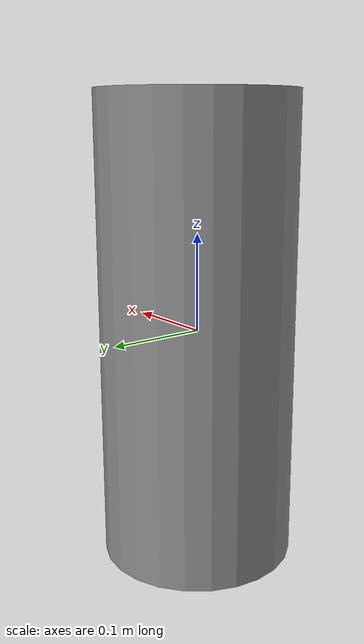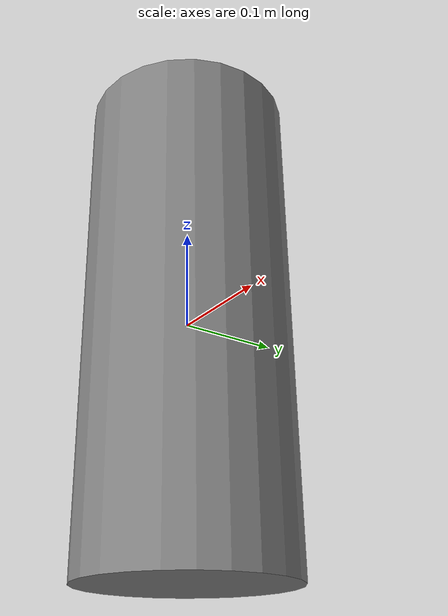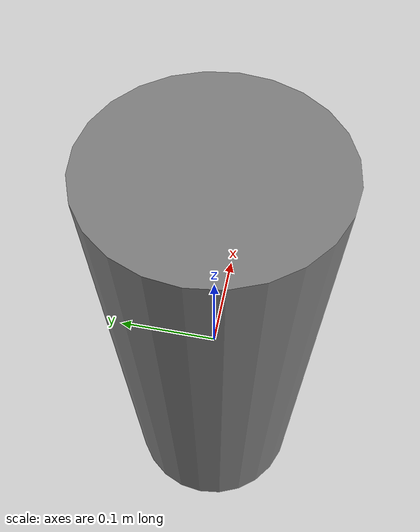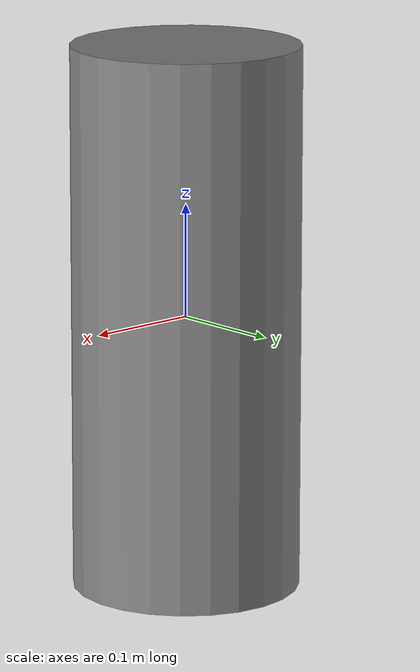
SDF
<?xml version="1.0" ?>
<sdf version="1.5">
  <model name="pedestal_5">
    <static>true</static>
    <link name="pedestal_link">
      <collision name="collision">
        <geometry>
          <cylinder>
            <radius>0.10</radius>
            <length>0.48</length>
          </cylinder>
        </geometry>
      </collision>
      <visual name="visual">
        <geometry>
          <cylinder>
            <radius>0.10</radius>
            <length>0.48</length>
          </cylinder>
        </geometry>
        <material>
          <ambient>0.5 0.5 0.5 1</ambient>
          <diffuse>0.5 0.5 0.5 1</diffuse>
        </material>
      </visual>
    </link>
  </model>
</sdf>
